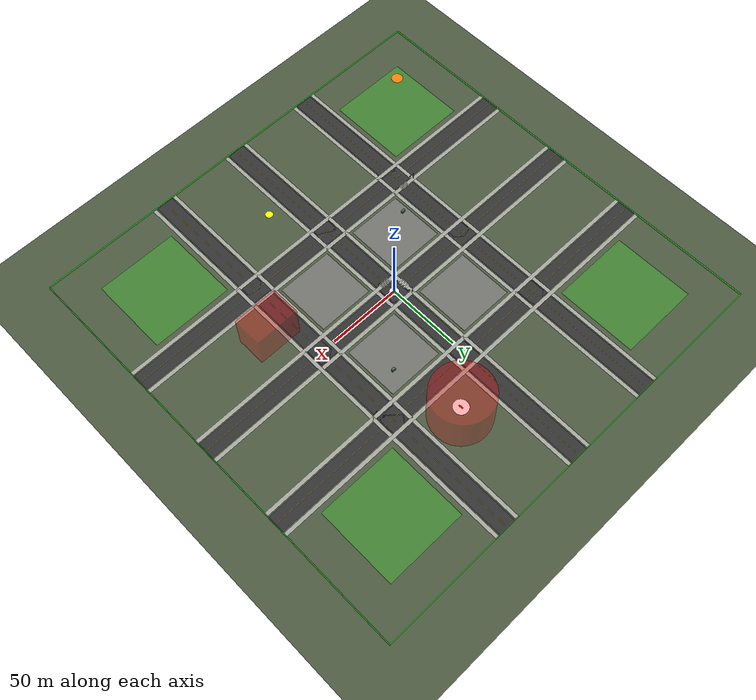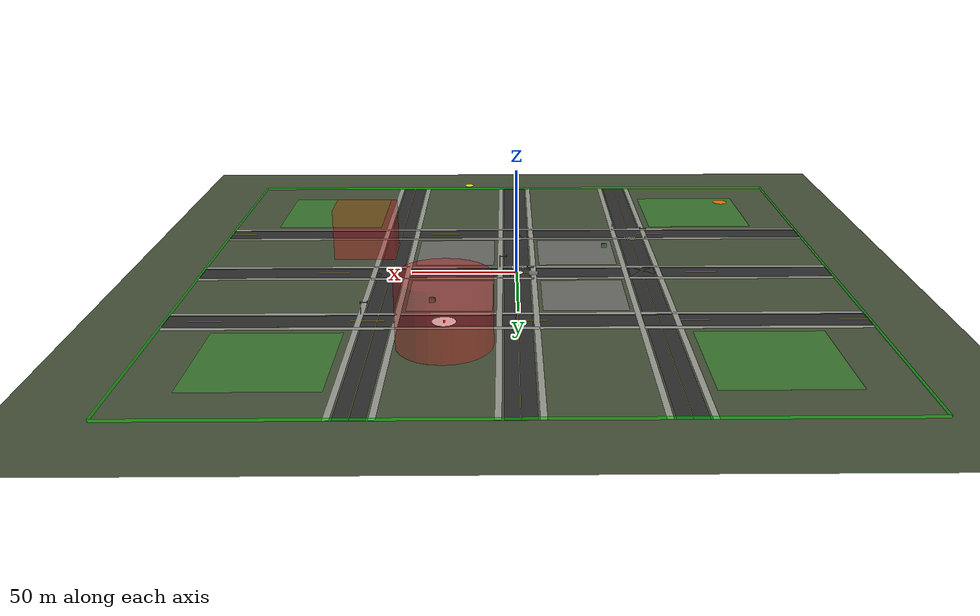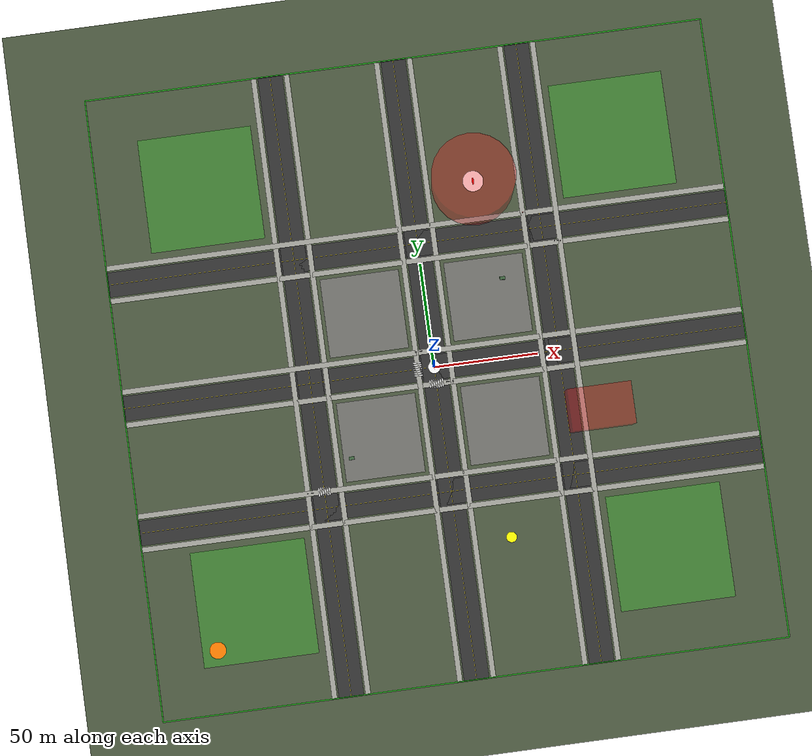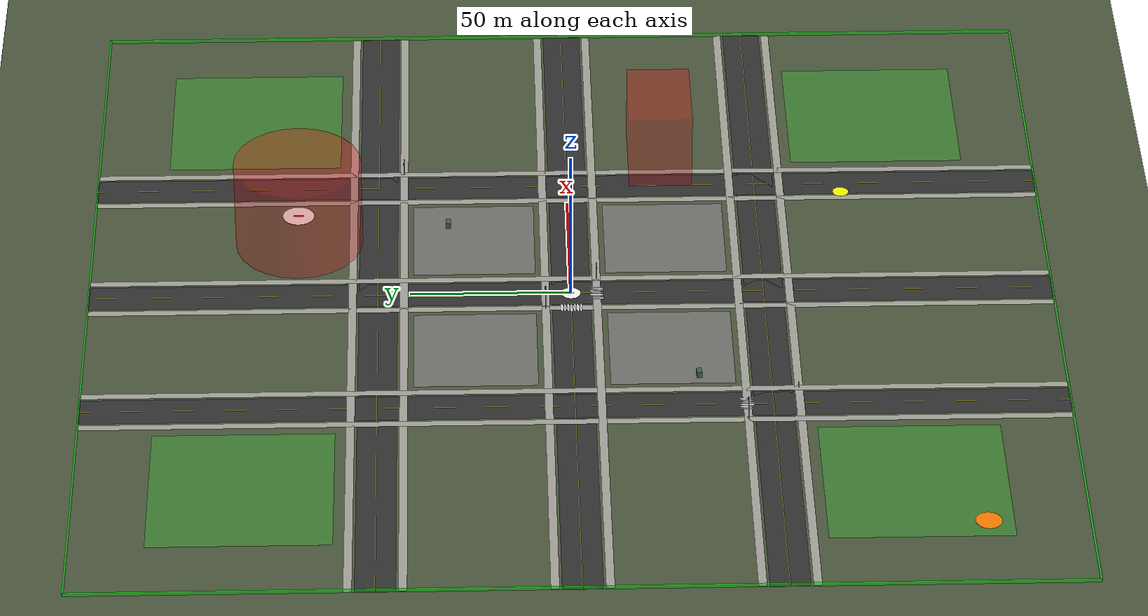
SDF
<sdf version="1.9">
 <world name="flyby_urban">
  <physics name="training_physics" type="ode">
   <max_step_size>0.001</max_step_size>
   <real_time_factor>1.0</real_time_factor>
   <real_time_update_rate>1000</real_time_update_rate>
   <ode>
    <solver><type>quick</type><iters>50</iters><sor>1.3</sor></solver>
    <constraints><cfm>0.0</cfm><erp>0.2</erp></constraints>
   </ode>
  </physics>
  <plugin filename="gz-sim-physics-system" name="gz::sim::systems::Physics"/>
  <plugin filename="gz-sim-sensors-system" name="gz::sim::systems::Sensors">
   <render_engine>ogre2</render_engine>
  </plugin>
  <plugin filename="gz-sim-scene-broadcaster-system" name="gz::sim::systems::SceneBroadcaster"/>
  <plugin filename="gz-sim-user-commands-system" name="gz::sim::systems::UserCommands"/>
  <plugin filename="gz-sim-imu-system" name="gz::sim::systems::Imu"/>
  <plugin filename="gz-sim-air-pressure-system" name="gz::sim::systems::AirPressure"/>
  <plugin filename="gz-sim-magnetometer-system" name="gz::sim::systems::Magnetometer"/>
  <plugin filename="gz-sim-navsat-system" name="gz::sim::systems::NavSat"/>
  <atmosphere type="adiabatic"><temperature>288.15</temperature><pressure>101325</pressure></atmosphere>
  <spherical_coordinates>
   <surface_model>EARTH_WGS84</surface_model>
   <world_frame_orientation>ENU</world_frame_orientation>
   <latitude_deg>33.4484</latitude_deg>
   <longitude_deg>-112.0740</longitude_deg>
   <elevation>331</elevation>
   <heading_deg>0</heading_deg>
  </spherical_coordinates>
  <light type="directional" name="sun">
   <pose>0 0 100 0 0 0</pose>
   <diffuse>0.8 0.8 0.8 1</diffuse>
   <specular>0.2 0.2 0.2 1</specular>
   <attenuation>
    <range>1000</range>
    <constant>0.9</constant>
    <linear>0.01</linear>
    <quadratic>0.001</quadratic>
   </attenuation>
   <direction>-0.5 0.1 -0.9</direction>
  </light>
  <light type="directional" name="ambient_fill">
   <cast_shadows>false</cast_shadows>
   <pose>0 0 100 0 0 0</pose>
   <diffuse>0.15 0.15 0.18 1</diffuse>
   <specular>0 0 0 1</specular>
   <direction>0 0 -1</direction>
  </light>
  <scene><ambient>0.4 0.4 0.4 1</ambient><background>0.7 0.75 0.85 1</background><shadows>true</shadows></scene>
  <model name="ground_base">
   <static>true</static>
   <pose>0 0 -0.01 0 0 0</pose>
   <link name="link">
    <collision name="collision">
     <geometry><plane><normal>0 0 1</normal><size>400 400</size></plane></geometry>
     <surface><friction><ode><mu>100</mu><mu2>50</mu2></ode></friction></surface>
    </collision>
    <visual name="visual">
     <geometry><plane><normal>0 0 1</normal><size>400 400</size></plane></geometry>
     <material><ambient>0.25 0.3 0.2 1</ambient><diffuse>0.3 0.35 0.25 1</diffuse></material>
    </visual>
   </link>
  </model>
  <model name="road_ns_west">
   <static>true</static>
   <pose>-60 0 0.001 0 0 0</pose>
   <link name="link">
    <visual name="asphalt">
     <geometry><box><size>12 300 0.002</size></box></geometry>
     <material><ambient>0.15 0.15 0.15 1</ambient><diffuse>0.2 0.2 0.2 1</diffuse></material>
    </visual>
    <visual name="center_line">
     <pose>0 0 0.001 0 0 0</pose>
     <geometry><box><size>0.15 300 0.001</size></box></geometry>
     <material><ambient>0.9 0.8 0.1 1</ambient><diffuse>1.0 0.9 0.2 1</diffuse></material>
    </visual>
   </link>
  </model>
  <model name="road_ns_center">
   <static>true</static>
   <pose>0 0 0.001 0 0 0</pose>
   <link name="link">
    <visual name="asphalt">
     <geometry><box><size>12 300 0.002</size></box></geometry>
     <material><ambient>0.15 0.15 0.15 1</ambient><diffuse>0.2 0.2 0.2 1</diffuse></material>
    </visual>
    <visual name="center_line">
     <pose>0 0 0.001 0 0 0</pose>
     <geometry><box><size>0.15 300 0.001</size></box></geometry>
     <material><ambient>0.9 0.8 0.1 1</ambient><diffuse>1.0 0.9 0.2 1</diffuse></material>
    </visual>
   </link>
  </model>
  <model name="road_ns_east">
   <static>true</static>
   <pose>60 0 0.001 0 0 0</pose>
   <link name="link">
    <visual name="asphalt">
     <geometry><box><size>12 300 0.002</size></box></geometry>
     <material><ambient>0.15 0.15 0.15 1</ambient><diffuse>0.2 0.2 0.2 1</diffuse></material>
    </visual>
    <visual name="center_line">
     <pose>0 0 0.001 0 0 0</pose>
     <geometry><box><size>0.15 300 0.001</size></box></geometry>
     <material><ambient>0.9 0.8 0.1 1</ambient><diffuse>1.0 0.9 0.2 1</diffuse></material>
    </visual>
   </link>
  </model>
  <model name="road_ew_south">
   <static>true</static>
   <pose>0 -60 0.001 0 0 0</pose>
   <link name="link">
    <visual name="asphalt">
     <geometry><box><size>300 12 0.002</size></box></geometry>
     <material><ambient>0.15 0.15 0.15 1</ambient><diffuse>0.2 0.2 0.2 1</diffuse></material>
    </visual>
    <visual name="center_line">
     <pose>0 0 0.001 0 0 0</pose>
     <geometry><box><size>300 0.15 0.001</size></box></geometry>
     <material><ambient>0.9 0.8 0.1 1</ambient><diffuse>1.0 0.9 0.2 1</diffuse></material>
    </visual>
   </link>
  </model>
  <model name="road_ew_center">
   <static>true</static>
   <pose>0 0 0.001 0 0 0</pose>
   <link name="link">
    <visual name="asphalt">
     <geometry><box><size>300 12 0.002</size></box></geometry>
     <material><ambient>0.15 0.15 0.15 1</ambient><diffuse>0.2 0.2 0.2 1</diffuse></material>
    </visual>
    <visual name="center_line">
     <pose>0 0 0.001 0 0 0</pose>
     <geometry><box><size>300 0.15 0.001</size></box></geometry>
     <material><ambient>0.9 0.8 0.1 1</ambient><diffuse>1.0 0.9 0.2 1</diffuse></material>
    </visual>
   </link>
  </model>
  <model name="road_ew_north">
   <static>true</static>
   <pose>0 60 0.001 0 0 0</pose>
   <link name="link">
    <visual name="asphalt">
     <geometry><box><size>300 12 0.002</size></box></geometry>
     <material><ambient>0.15 0.15 0.15 1</ambient><diffuse>0.2 0.2 0.2 1</diffuse></material>
    </visual>
    <visual name="center_line">
     <pose>0 0 0.001 0 0 0</pose>
     <geometry><box><size>300 0.15 0.001</size></box></geometry>
     <material><ambient>0.9 0.8 0.1 1</ambient><diffuse>1.0 0.9 0.2 1</diffuse></material>
    </visual>
   </link>
  </model>
  <model name="sidewalk_ns_west_w">
   <static>true</static>
   <pose>-68 0 0.002 0 0 0</pose>
   <link name="link">
    <visual name="visual">
     <geometry><box><size>2.5 300 0.003</size></box></geometry>
     <material><ambient>0.55 0.55 0.52 1</ambient><diffuse>0.65 0.65 0.62 1</diffuse></material>
    </visual>
   </link>
  </model>
  <model name="sidewalk_ns_west_e">
   <static>true</static>
   <pose>-52 0 0.002 0 0 0</pose>
   <link name="link">
    <visual name="visual">
     <geometry><box><size>2.5 300 0.003</size></box></geometry>
     <material><ambient>0.55 0.55 0.52 1</ambient><diffuse>0.65 0.65 0.62 1</diffuse></material>
    </visual>
   </link>
  </model>
  <model name="sidewalk_ns_center_w">
   <static>true</static>
   <pose>-8 0 0.002 0 0 0</pose>
   <link name="link">
    <visual name="visual">
     <geometry><box><size>2.5 300 0.003</size></box></geometry>
     <material><ambient>0.55 0.55 0.52 1</ambient><diffuse>0.65 0.65 0.62 1</diffuse></material>
    </visual>
   </link>
  </model>
  <model name="sidewalk_ns_center_e">
   <static>true</static>
   <pose>8 0 0.002 0 0 0</pose>
   <link name="link">
    <visual name="visual">
     <geometry><box><size>2.5 300 0.003</size></box></geometry>
     <material><ambient>0.55 0.55 0.52 1</ambient><diffuse>0.65 0.65 0.62 1</diffuse></material>
    </visual>
   </link>
  </model>
  <model name="sidewalk_ns_east_w">
   <static>true</static>
   <pose>52 0 0.002 0 0 0</pose>
   <link name="link">
    <visual name="visual">
     <geometry><box><size>2.5 300 0.003</size></box></geometry>
     <material><ambient>0.55 0.55 0.52 1</ambient><diffuse>0.65 0.65 0.62 1</diffuse></material>
    </visual>
   </link>
  </model>
  <model name="sidewalk_ns_east_e">
   <static>true</static>
   <pose>68 0 0.002 0 0 0</pose>
   <link name="link">
    <visual name="visual">
     <geometry><box><size>2.5 300 0.003</size></box></geometry>
     <material><ambient>0.55 0.55 0.52 1</ambient><diffuse>0.65 0.65 0.62 1</diffuse></material>
    </visual>
   </link>
  </model>
  <model name="sidewalk_ew_south_s">
   <static>true</static>
   <pose>0 -68 0.002 0 0 0</pose>
   <link name="link">
    <visual name="visual">
     <geometry><box><size>300 2.5 0.003</size></box></geometry>
     <material><ambient>0.55 0.55 0.52 1</ambient><diffuse>0.65 0.65 0.62 1</diffuse></material>
    </visual>
   </link>
  </model>
  <model name="sidewalk_ew_south_n">
   <static>true</static>
   <pose>0 -52 0.002 0 0 0</pose>
   <link name="link">
    <visual name="visual">
     <geometry><box><size>300 2.5 0.003</size></box></geometry>
     <material><ambient>0.55 0.55 0.52 1</ambient><diffuse>0.65 0.65 0.62 1</diffuse></material>
    </visual>
   </link>
  </model>
  <model name="sidewalk_ew_center_s">
   <static>true</static>
   <pose>0 -8 0.002 0 0 0</pose>
   <link name="link">
    <visual name="visual">
     <geometry><box><size>300 2.5 0.003</size></box></geometry>
     <material><ambient>0.55 0.55 0.52 1</ambient><diffuse>0.65 0.65 0.62 1</diffuse></material>
    </visual>
   </link>
  </model>
  <model name="sidewalk_ew_center_n">
   <static>true</static>
   <pose>0 8 0.002 0 0 0</pose>
   <link name="link">
    <visual name="visual">
     <geometry><box><size>300 2.5 0.003</size></box></geometry>
     <material><ambient>0.55 0.55 0.52 1</ambient><diffuse>0.65 0.65 0.62 1</diffuse></material>
    </visual>
   </link>
  </model>
  <model name="sidewalk_ew_north_s">
   <static>true</static>
   <pose>0 52 0.002 0 0 0</pose>
   <link name="link">
    <visual name="visual">
     <geometry><box><size>300 2.5 0.003</size></box></geometry>
     <material><ambient>0.55 0.55 0.52 1</ambient><diffuse>0.65 0.65 0.62 1</diffuse></material>
    </visual>
   </link>
  </model>
  <model name="sidewalk_ew_north_n">
   <static>true</static>
   <pose>0 68 0.002 0 0 0</pose>
   <link name="link">
    <visual name="visual">
     <geometry><box><size>300 2.5 0.003</size></box></geometry>
     <material><ambient>0.55 0.55 0.52 1</ambient><diffuse>0.65 0.65 0.62 1</diffuse></material>
    </visual>
   </link>
  </model>
  <model name="block_commercial_nw">
   <static>true</static>
   <pose>-30 30 0.003 0 0 0</pose>
   <link name="link">
    <visual name="visual">
     <geometry><box><size>38 38 0.002</size></box></geometry>
     <material><ambient>0.4 0.4 0.38 1</ambient><diffuse>0.45 0.45 0.43 1</diffuse></material>
    </visual>
   </link>
  </model>
  <model name="block_commercial_ne">
   <static>true</static>
   <pose>30 30 0.003 0 0 0</pose>
   <link name="link">
    <visual name="visual">
     <geometry><box><size>38 38 0.002</size></box></geometry>
     <material><ambient>0.4 0.4 0.38 1</ambient><diffuse>0.45 0.45 0.43 1</diffuse></material>
    </visual>
   </link>
  </model>
  <model name="block_commercial_sw">
   <static>true</static>
   <pose>-30 -30 0.003 0 0 0</pose>
   <link name="link">
    <visual name="visual">
     <geometry><box><size>38 38 0.002</size></box></geometry>
     <material><ambient>0.4 0.4 0.38 1</ambient><diffuse>0.45 0.45 0.43 1</diffuse></material>
    </visual>
   </link>
  </model>
  <model name="block_commercial_se">
   <static>true</static>
   <pose>30 -30 0.003 0 0 0</pose>
   <link name="link">
    <visual name="visual">
     <geometry><box><size>38 38 0.002</size></box></geometry>
     <material><ambient>0.4 0.4 0.38 1</ambient><diffuse>0.45 0.45 0.43 1</diffuse></material>
    </visual>
   </link>
  </model>
  <model name="block_residential_far_nw">
   <static>true</static>
   <pose>-100 100 0.002 0 0 0</pose>
   <link name="link">
    <visual name="visual">
     <geometry><box><size>55 55 0.002</size></box></geometry>
     <material><ambient>0.2 0.4 0.15 1</ambient><diffuse>0.25 0.5 0.2 1</diffuse></material>
    </visual>
   </link>
  </model>
  <model name="block_residential_far_ne">
   <static>true</static>
   <pose>100 100 0.002 0 0 0</pose>
   <link name="link">
    <visual name="visual">
     <geometry><box><size>55 55 0.002</size></box></geometry>
     <material><ambient>0.2 0.4 0.15 1</ambient><diffuse>0.25 0.5 0.2 1</diffuse></material>
    </visual>
   </link>
  </model>
  <model name="block_residential_far_sw">
   <static>true</static>
   <pose>-100 -100 0.002 0 0 0</pose>
   <link name="link">
    <visual name="visual">
     <geometry><box><size>55 55 0.002</size></box></geometry>
     <material><ambient>0.2 0.4 0.15 1</ambient><diffuse>0.25 0.5 0.2 1</diffuse></material>
    </visual>
   </link>
  </model>
  <model name="block_residential_far_se">
   <static>true</static>
   <pose>100 -100 0.002 0 0 0</pose>
   <link name="link">
    <visual name="visual">
     <geometry><box><size>55 55 0.002</size></box></geometry>
     <material><ambient>0.2 0.4 0.15 1</ambient><diffuse>0.25 0.5 0.2 1</diffuse></material>
    </visual>
   </link>
  </model>
  <model name="geofence_north">
   <static>true</static>
   <pose>0 150 0.5 0 0 0</pose>
   <link name="link">
    <visual name="visual">
     <geometry><box><size>300 0.5 1</size></box></geometry>
     <material><ambient>0 1 0 0.5</ambient><diffuse>0 1 0 0.5</diffuse></material>
    </visual>
   </link>
  </model>
  <model name="geofence_south">
   <static>true</static>
   <pose>0 -150 0.5 0 0 0</pose>
   <link name="link">
    <visual name="visual">
     <geometry><box><size>300 0.5 1</size></box></geometry>
     <material><ambient>0 1 0 0.5</ambient><diffuse>0 1 0 0.5</diffuse></material>
    </visual>
   </link>
  </model>
  <model name="geofence_east">
   <static>true</static>
   <pose>150 0 0.5 0 0 0</pose>
   <link name="link">
    <visual name="visual">
     <geometry><box><size>0.5 300 1</size></box></geometry>
     <material><ambient>0 1 0 0.5</ambient><diffuse>0 1 0 0.5</diffuse></material>
    </visual>
   </link>
  </model>
  <model name="geofence_west">
   <static>true</static>
   <pose>-150 0 0.5 0 0 0</pose>
   <link name="link">
    <visual name="visual">
     <geometry><box><size>0.5 300 1</size></box></geometry>
     <material><ambient>0 1 0 0.5</ambient><diffuse>0 1 0 0.5</diffuse></material>
    </visual>
   </link>
  </model>
  <model name="gas_station_collision">
   <static>true</static>
   <pose>-25 -25 2.5 0 0 0.02</pose>
   <link name="link">
    <collision name="collision"><geometry><box><size>20 15 5</size></box></geometry></collision>
   </link>
  </model>
  <model name="fast_food_collision">
   <static>true</static>
   <pose>24.5 -28 2.5 0 0 -0.03</pose>
   <link name="link">
    <collision name="collision"><geometry><box><size>10 8 5</size></box></geometry></collision>
   </link>
  </model>
  <model name="grocery_store_collision">
   <static>true</static>
   <pose>-30 30.3 3 0 0 0</pose>
   <link name="link">
    <collision name="collision"><geometry><box><size>12 10 6</size></box></geometry></collision>
   </link>
  </model>
  <model name="thrift_shop_collision">
   <static>true</static>
   <pose>28 32 3 0 0 0.04</pose>
   <link name="link">
    <collision name="collision"><geometry><box><size>8 6 6</size></box></geometry></collision>
   </link>
  </model>
  <model name="post_office_collision">
   <static>true</static>
   <pose>-38 -35 3 0 0 0.01</pose>
   <link name="link">
    <collision name="collision"><geometry><box><size>8 6 6</size></box></geometry></collision>
   </link>
  </model>
  <model name="office_building_1_collision">
   <static>true</static>
   <pose>25 -85 10 0 0 0.015</pose>
   <link name="link">
    <collision name="collision"><geometry><box><size>15 12 20</size></box></geometry></collision>
   </link>
  </model>
  <model name="office_building_2_collision">
   <static>true</static>
   <pose>-28 85 10 0 0 3.16</pose>
   <link name="link">
    <collision name="collision"><geometry><box><size>15 12 20</size></box></geometry></collision>
   </link>
  </model>
  <model name="fire_station_collision">
   <static>true</static>
   <pose>75 -30 4 0 0 -1.57</pose>
   <link name="link">
    <collision name="collision"><geometry><box><size>18 12 8</size></box></geometry></collision>
   </link>
  </model>
  <model name="apartment_1_collision">
   <static>true</static>
   <pose>-85 30 7.5 0 0 0.03</pose>
   <link name="link">
    <collision name="collision"><geometry><box><size>20 15 15</size></box></geometry></collision>
   </link>
  </model>
  <model name="apartment_2_collision">
   <static>true</static>
   <pose>85 -85 7.5 0 0 1.59</pose>
   <link name="link">
    <collision name="collision"><geometry><box><size>20 15 15</size></box></geometry></collision>
   </link>
  </model>
  <model name="apartment_3a_collision">
   <static>true</static>
   <pose>-85 -85 7.5 0 0 0.02</pose>
   <link name="link">
    <collision name="collision"><geometry><box><size>20 15 15</size></box></geometry></collision>
   </link>
  </model>
  <model name="apartment_3b_collision">
   <static>true</static>
   <pose>-85 -105 7.5 0 0 -0.02</pose>
   <link name="link">
    <collision name="collision"><geometry><box><size>20 15 15</size></box></geometry></collision>
   </link>
  </model>
  <model name="house_nw_1_collision">
   <static>true</static>
   <pose>-95 95 4 0 0 0.78</pose>
   <link name="link">
    <collision name="collision"><geometry><box><size>12 10 8</size></box></geometry></collision>
   </link>
  </model>
  <model name="house_nw_2_collision">
   <static>true</static>
   <pose>-110 100 4 0 0 0.02</pose>
   <link name="link">
    <collision name="collision"><geometry><box><size>12 10 8</size></box></geometry></collision>
   </link>
  </model>
  <model name="house_nw_3_collision">
   <static>true</static>
   <pose>-95 110 4 0 0 -0.03</pose>
   <link name="link">
    <collision name="collision"><geometry><box><size>12 10 8</size></box></geometry></collision>
   </link>
  </model>
  <model name="house_ne_1_collision">
   <static>true</static>
   <pose>95 95 4 0 0 2.35</pose>
   <link name="link">
    <collision name="collision"><geometry><box><size>12 10 8</size></box></geometry></collision>
   </link>
  </model>
  <model name="house_ne_2_collision">
   <static>true</static>
   <pose>110 100 4 0 0 3.12</pose>
   <link name="link">
    <collision name="collision"><geometry><box><size>12 10 8</size></box></geometry></collision>
   </link>
  </model>
  <model name="house_sw_1_collision">
   <static>true</static>
   <pose>-95 -95 4 0 0 -0.78</pose>
   <link name="link">
    <collision name="collision"><geometry><box><size>12 10 8</size></box></geometry></collision>
   </link>
  </model>
  <model name="house_sw_2_collision">
   <static>true</static>
   <pose>-110 -100 4 0 0 0.01</pose>
   <link name="link">
    <collision name="collision"><geometry><box><size>12 10 8</size></box></geometry></collision>
   </link>
  </model>
  <model name="house_se_1_collision">
   <static>true</static>
   <pose>95 -95 4 0 0 -2.35</pose>
   <link name="link">
    <collision name="collision"><geometry><box><size>12 10 8</size></box></geometry></collision>
   </link>
  </model>
  <model name="house_se_2_collision">
   <static>true</static>
   <pose>110 -100 4 0 0 3.16</pose>
   <link name="link">
    <collision name="collision"><geometry><box><size>12 10 8</size></box></geometry></collision>
   </link>
  </model>
  <model name="hospital_building_collision">
   <static>true</static>
   <pose>30 85 5 0 0 0</pose>
   <link name="link">
    <collision name="collision"><geometry><box><size>18 14 10</size></box></geometry></collision>
   </link>
  </model>
  <model name="helipad_marker">
   <static>true</static>
   <pose>30 85 10.02 0 0 0</pose>
   <link name="link">
    <visual name="circle">
     <geometry><cylinder><radius>5</radius><length>0.04</length></cylinder></geometry>
     <material><ambient>1 1 1 1</ambient><diffuse>1 1 1 1</diffuse></material>
    </visual>
    <visual name="h_mark">
     <pose>0 0 0.02 0 0 0</pose>
     <geometry><box><size>0.8 3 0.02</size></box></geometry>
     <material><ambient>1 0 0 1</ambient><diffuse>1 0 0 1</diffuse></material>
    </visual>
   </link>
  </model>
  <model name="nfz_hospital_helipad">
   <static>true</static>
   <pose>30 85 15 0 0 0</pose>
   <link name="link">
    <visual name="visual">
     <geometry><cylinder><radius>20</radius><length>30</length></cylinder></geometry>
     <material><ambient>1 0 0 0.3</ambient><diffuse>1 0 0 0.3</diffuse></material>
    </visual>
   </link>
  </model>
  <model name="nfz_government">
   <static>true</static>
   <pose>75 -30 12.5 0 0 0</pose>
   <link name="link">
    <visual name="visual">
     <geometry><box><size>30 20 25</size></box></geometry>
     <material><ambient>1 0 0 0.3</ambient><diffuse>1 0 0 0.3</diffuse></material>
    </visual>
   </link>
  </model>
  <model name="vehicle_1_collision">
   <static>true</static>
   <pose>-40 -55 0.75 0 0 0</pose>
   <link name="link">
    <collision name="collision"><geometry><box><size>4 1.8 1.5</size></box></geometry></collision>
   </link>
  </model>
  <model name="vehicle_2_collision">
   <static>true</static>
   <pose>-25 -55 0.75 0 0 0.02</pose>
   <link name="link">
    <collision name="collision"><geometry><box><size>4 1.8 1.5</size></box></geometry></collision>
   </link>
  </model>
  <model name="vehicle_3_collision">
   <static>true</static>
   <pose>-5 -40 0.9 0 0 1.57</pose>
   <link name="link">
    <collision name="collision"><geometry><box><size>4.5 2 1.8</size></box></geometry></collision>
   </link>
  </model>
  <model name="vehicle_4_collision">
   <static>true</static>
   <pose>5 40 0.9 0 0 -1.57</pose>
   <link name="link">
    <collision name="collision"><geometry><box><size>5.5 2 1.8</size></box></geometry></collision>
   </link>
  </model>
  <model name="vehicle_5_collision">
   <static>true</static>
   <pose>-35 -20 0.75 0 0 0.05</pose>
   <link name="link">
    <collision name="collision"><geometry><box><size>4.5 1.8 1.5</size></box></geometry></collision>
   </link>
  </model>
  <model name="vehicle_6_collision">
   <static>true</static>
   <pose>35 -35 0.75 0 0 3.14</pose>
   <link name="link">
    <collision name="collision"><geometry><box><size>4 1.8 1.5</size></box></geometry></collision>
   </link>
  </model>
  <model name="bus_1_collision">
   <static>true</static>
   <pose>-5 75 1.5 0 0 1.57</pose>
   <link name="link">
    <collision name="collision"><geometry><box><size>12 2.5 3</size></box></geometry></collision>
   </link>
  </model>
  <model name="traffic_light_center_nw">
   <static>true</static>
   <pose>-8 8 0 0 0 0</pose>
   <link name="link">
    <visual name="pole">
     <pose>0 0 3 0 0 0</pose>
     <geometry><cylinder><radius>0.1</radius><length>6</length></cylinder></geometry>
     <material><ambient>0.2 0.2 0.2 1</ambient><diffuse>0.3 0.3 0.3 1</diffuse></material>
    </visual>
    <visual name="arm">
     <pose>1.5 0 5.5 0 1.57 0</pose>
     <geometry><cylinder><radius>0.08</radius><length>3</length></cylinder></geometry>
     <material><ambient>0.2 0.2 0.2 1</ambient><diffuse>0.3 0.3 0.3 1</diffuse></material>
    </visual>
    <visual name="light_box">
     <pose>3 0 5.5 0 0 0</pose>
     <geometry><box><size>0.4 0.4 1.2</size></box></geometry>
     <material><ambient>0.15 0.15 0.15 1</ambient><diffuse>0.2 0.2 0.2 1</diffuse></material>
    </visual>
    <collision name="collision">
     <pose>0 0 3 0 0 0</pose>
     <geometry><cylinder><radius>0.15</radius><length>6</length></cylinder></geometry>
    </collision>
   </link>
  </model>
  <model name="traffic_light_center_se">
   <static>true</static>
   <pose>8 -8 0 0 0 3.14</pose>
   <link name="link">
    <visual name="pole">
     <pose>0 0 3 0 0 0</pose>
     <geometry><cylinder><radius>0.1</radius><length>6</length></cylinder></geometry>
     <material><ambient>0.2 0.2 0.2 1</ambient><diffuse>0.3 0.3 0.3 1</diffuse></material>
    </visual>
    <visual name="arm">
     <pose>1.5 0 5.5 0 1.57 0</pose>
     <geometry><cylinder><radius>0.08</radius><length>3</length></cylinder></geometry>
     <material><ambient>0.2 0.2 0.2 1</ambient><diffuse>0.3 0.3 0.3 1</diffuse></material>
    </visual>
    <visual name="light_box">
     <pose>3 0 5.5 0 0 0</pose>
     <geometry><box><size>0.4 0.4 1.2</size></box></geometry>
     <material><ambient>0.15 0.15 0.15 1</ambient><diffuse>0.2 0.2 0.2 1</diffuse></material>
    </visual>
    <collision name="collision">
     <pose>0 0 3 0 0 0</pose>
     <geometry><cylinder><radius>0.15</radius><length>6</length></cylinder></geometry>
    </collision>
   </link>
  </model>
  <model name="traffic_light_sw">
   <static>true</static>
   <pose>-68 -52 0 0 0 0</pose>
   <link name="link">
    <visual name="pole">
     <pose>0 0 3 0 0 0</pose>
     <geometry><cylinder><radius>0.1</radius><length>6</length></cylinder></geometry>
     <material><ambient>0.2 0.2 0.2 1</ambient><diffuse>0.3 0.3 0.3 1</diffuse></material>
    </visual>
    <visual name="arm">
     <pose>1.5 0 5.5 0 1.57 0</pose>
     <geometry><cylinder><radius>0.08</radius><length>3</length></cylinder></geometry>
     <material><ambient>0.2 0.2 0.2 1</ambient><diffuse>0.3 0.3 0.3 1</diffuse></material>
    </visual>
    <visual name="light_box">
     <pose>3 0 5.5 0 0 0</pose>
     <geometry><box><size>0.4 0.4 1.2</size></box></geometry>
     <material><ambient>0.15 0.15 0.15 1</ambient><diffuse>0.2 0.2 0.2 1</diffuse></material>
    </visual>
    <collision name="collision">
     <pose>0 0 3 0 0 0</pose>
     <geometry><cylinder><radius>0.15</radius><length>6</length></cylinder></geometry>
    </collision>
   </link>
  </model>
  <model name="traffic_light_ne">
   <static>true</static>
   <pose>68 52 0 0 0 3.14</pose>
   <link name="link">
    <visual name="pole">
     <pose>0 0 3 0 0 0</pose>
     <geometry><cylinder><radius>0.1</radius><length>6</length></cylinder></geometry>
     <material><ambient>0.2 0.2 0.2 1</ambient><diffuse>0.3 0.3 0.3 1</diffuse></material>
    </visual>
    <visual name="arm">
     <pose>1.5 0 5.5 0 1.57 0</pose>
     <geometry><cylinder><radius>0.08</radius><length>3</length></cylinder></geometry>
     <material><ambient>0.2 0.2 0.2 1</ambient><diffuse>0.3 0.3 0.3 1</diffuse></material>
    </visual>
    <visual name="light_box">
     <pose>3 0 5.5 0 0 0</pose>
     <geometry><box><size>0.4 0.4 1.2</size></box></geometry>
     <material><ambient>0.15 0.15 0.15 1</ambient><diffuse>0.2 0.2 0.2 1</diffuse></material>
    </visual>
    <collision name="collision">
     <pose>0 0 3 0 0 0</pose>
     <geometry><cylinder><radius>0.15</radius><length>6</length></cylinder></geometry>
    </collision>
   </link>
  </model>
  <model name="stop_sign_1">
   <static>true</static>
   <pose>-52 -68 0 0 0 0</pose>
   <link name="link">
    <visual name="pole">
     <pose>0 0 1.5 0 0 0</pose>
     <geometry><cylinder><radius>0.05</radius><length>3</length></cylinder></geometry>
     <material><ambient>0.3 0.3 0.3 1</ambient><diffuse>0.4 0.4 0.4 1</diffuse></material>
    </visual>
    <visual name="sign">
     <pose>0 0 2.8 0 0 0</pose>
     <geometry><box><size>0.6 0.05 0.6</size></box></geometry>
     <material><ambient>0.8 0.1 0.1 1</ambient><diffuse>0.9 0.15 0.15 1</diffuse></material>
    </visual>
    <collision name="collision">
     <pose>0 0 1.5 0 0 0</pose>
     <geometry><cylinder><radius>0.1</radius><length>3</length></cylinder></geometry>
    </collision>
   </link>
  </model>
  <model name="stop_sign_2">
   <static>true</static>
   <pose>52 68 0 0 0 3.14</pose>
   <link name="link">
    <visual name="pole">
     <pose>0 0 1.5 0 0 0</pose>
     <geometry><cylinder><radius>0.05</radius><length>3</length></cylinder></geometry>
     <material><ambient>0.3 0.3 0.3 1</ambient><diffuse>0.4 0.4 0.4 1</diffuse></material>
    </visual>
    <visual name="sign">
     <pose>0 0 2.8 0 0 0</pose>
     <geometry><box><size>0.6 0.05 0.6</size></box></geometry>
     <material><ambient>0.8 0.1 0.1 1</ambient><diffuse>0.9 0.15 0.15 1</diffuse></material>
    </visual>
    <collision name="collision">
     <pose>0 0 1.5 0 0 0</pose>
     <geometry><cylinder><radius>0.1</radius><length>3</length></cylinder></geometry>
    </collision>
   </link>
  </model>
  <model name="crosswalk_center_ns">
   <static>true</static>
   <pose>0 -8 0.004 0 0 0</pose>
   <link name="link">
    <visual name="stripe1">
     <pose>-3 0 0 0 0 0</pose>
     <geometry><box><size>0.5 4 0.002</size></box></geometry>
     <material><ambient>1 1 1 1</ambient><diffuse>1 1 1 1</diffuse></material>
    </visual>
    <visual name="stripe2">
     <pose>-2 0 0 0 0 0</pose>
     <geometry><box><size>0.5 4 0.002</size></box></geometry>
     <material><ambient>1 1 1 1</ambient><diffuse>1 1 1 1</diffuse></material>
    </visual>
    <visual name="stripe3">
     <pose>-1 0 0 0 0 0</pose>
     <geometry><box><size>0.5 4 0.002</size></box></geometry>
     <material><ambient>1 1 1 1</ambient><diffuse>1 1 1 1</diffuse></material>
    </visual>
    <visual name="stripe4">
     <geometry><box><size>0.5 4 0.002</size></box></geometry>
     <material><ambient>1 1 1 1</ambient><diffuse>1 1 1 1</diffuse></material>
    </visual>
    <visual name="stripe5">
     <pose>1 0 0 0 0 0</pose>
     <geometry><box><size>0.5 4 0.002</size></box></geometry>
     <material><ambient>1 1 1 1</ambient><diffuse>1 1 1 1</diffuse></material>
    </visual>
    <visual name="stripe6">
     <pose>2 0 0 0 0 0</pose>
     <geometry><box><size>0.5 4 0.002</size></box></geometry>
     <material><ambient>1 1 1 1</ambient><diffuse>1 1 1 1</diffuse></material>
    </visual>
    <visual name="stripe7">
     <pose>3 0 0 0 0 0</pose>
     <geometry><box><size>0.5 4 0.002</size></box></geometry>
     <material><ambient>1 1 1 1</ambient><diffuse>1 1 1 1</diffuse></material>
    </visual>
   </link>
  </model>
  <model name="crosswalk_center_ew">
   <static>true</static>
   <pose>-8 0 0.004 0 0 1.57</pose>
   <link name="link">
    <visual name="stripe1">
     <pose>-3 0 0 0 0 0</pose>
     <geometry><box><size>0.5 4 0.002</size></box></geometry>
     <material><ambient>1 1 1 1</ambient><diffuse>1 1 1 1</diffuse></material>
    </visual>
    <visual name="stripe2">
     <pose>-2 0 0 0 0 0</pose>
     <geometry><box><size>0.5 4 0.002</size></box></geometry>
     <material><ambient>1 1 1 1</ambient><diffuse>1 1 1 1</diffuse></material>
    </visual>
    <visual name="stripe3">
     <pose>-1 0 0 0 0 0</pose>
     <geometry><box><size>0.5 4 0.002</size></box></geometry>
     <material><ambient>1 1 1 1</ambient><diffuse>1 1 1 1</diffuse></material>
    </visual>
    <visual name="stripe4">
     <geometry><box><size>0.5 4 0.002</size></box></geometry>
     <material><ambient>1 1 1 1</ambient><diffuse>1 1 1 1</diffuse></material>
    </visual>
    <visual name="stripe5">
     <pose>1 0 0 0 0 0</pose>
     <geometry><box><size>0.5 4 0.002</size></box></geometry>
     <material><ambient>1 1 1 1</ambient><diffuse>1 1 1 1</diffuse></material>
    </visual>
    <visual name="stripe6">
     <pose>2 0 0 0 0 0</pose>
     <geometry><box><size>0.5 4 0.002</size></box></geometry>
     <material><ambient>1 1 1 1</ambient><diffuse>1 1 1 1</diffuse></material>
    </visual>
    <visual name="stripe7">
     <pose>3 0 0 0 0 0</pose>
     <geometry><box><size>0.5 4 0.002</size></box></geometry>
     <material><ambient>1 1 1 1</ambient><diffuse>1 1 1 1</diffuse></material>
    </visual>
   </link>
  </model>
  <model name="crosswalk_sw_ns">
   <static>true</static>
   <pose>-60 -52 0.004 0 0 0</pose>
   <link name="link">
    <visual name="stripe1">
     <pose>-2.5 0 0 0 0 0</pose>
     <geometry><box><size>0.5 4 0.002</size></box></geometry>
     <material><ambient>1 1 1 1</ambient><diffuse>1 1 1 1</diffuse></material>
    </visual>
    <visual name="stripe2">
     <pose>-1.5 0 0 0 0 0</pose>
     <geometry><box><size>0.5 4 0.002</size></box></geometry>
     <material><ambient>1 1 1 1</ambient><diffuse>1 1 1 1</diffuse></material>
    </visual>
    <visual name="stripe3">
     <pose>-0.5 0 0 0 0 0</pose>
     <geometry><box><size>0.5 4 0.002</size></box></geometry>
     <material><ambient>1 1 1 1</ambient><diffuse>1 1 1 1</diffuse></material>
    </visual>
    <visual name="stripe4">
     <pose>0.5 0 0 0 0 0</pose>
     <geometry><box><size>0.5 4 0.002</size></box></geometry>
     <material><ambient>1 1 1 1</ambient><diffuse>1 1 1 1</diffuse></material>
    </visual>
    <visual name="stripe5">
     <pose>1.5 0 0 0 0 0</pose>
     <geometry><box><size>0.5 4 0.002</size></box></geometry>
     <material><ambient>1 1 1 1</ambient><diffuse>1 1 1 1</diffuse></material>
    </visual>
    <visual name="stripe6">
     <pose>2.5 0 0 0 0 0</pose>
     <geometry><box><size>0.5 4 0.002</size></box></geometry>
     <material><ambient>1 1 1 1</ambient><diffuse>1 1 1 1</diffuse></material>
    </visual>
   </link>
  </model>
  <model name="dumpster_1">
   <static>true</static>
   <pose>-45 -38 0 0 0 0.1</pose>
   <link name="link">
    <visual name="body">
     <pose>0 0 1 0 0 0</pose>
     <geometry><box><size>2.5 1.5 2</size></box></geometry>
     <material><ambient>0.2 0.35 0.2 1</ambient><diffuse>0.25 0.4 0.25 1</diffuse></material>
    </visual>
    <collision name="collision">
     <pose>0 0 1 0 0 0</pose>
     <geometry><box><size>2.5 1.5 2</size></box></geometry>
    </collision>
   </link>
  </model>
  <model name="dumpster_2">
   <static>true</static>
   <pose>38 38 0 0 0 -0.05</pose>
   <link name="link">
    <visual name="body">
     <pose>0 0 1 0 0 0</pose>
     <geometry><box><size>2.5 1.5 2</size></box></geometry>
     <material><ambient>0.2 0.35 0.2 1</ambient><diffuse>0.25 0.4 0.25 1</diffuse></material>
    </visual>
    <collision name="collision">
     <pose>0 0 1 0 0 0</pose>
     <geometry><box><size>2.5 1.5 2</size></box></geometry>
    </collision>
   </link>
  </model>
  <model name="landing_zone_primary">
   <static>true</static>
   <pose>0 0 0.005 0 0 0</pose>
   <link name="link">
    <visual name="visual">
     <geometry><cylinder><radius>3</radius><length>0.01</length></cylinder></geometry>
     <material><ambient>1 1 1 1</ambient><diffuse>1 1 1 1</diffuse></material>
    </visual>
    <visual name="H_mark">
     <pose>0 0 0.005 0 0 0</pose>
     <geometry><box><size>0.5 2 0.005</size></box></geometry>
     <material><ambient>0 0 1 1</ambient><diffuse>0 0 1 1</diffuse></material>
    </visual>
   </link>
  </model>
  <model name="landing_zone_rooftop_office">
   <static>true</static>
   <pose>25 -85 20.01 0 0 0</pose>
   <link name="link">
    <visual name="visual">
     <geometry><cylinder><radius>2.5</radius><length>0.02</length></cylinder></geometry>
     <material><ambient>1 1 0 1</ambient><diffuse>1 1 0 1</diffuse></material>
    </visual>
   </link>
  </model>
  <model name="landing_zone_emergency">
   <static>true</static>
   <pose>-120 -120 0.005 0 0 0</pose>
   <link name="link">
    <visual name="visual">
     <geometry><cylinder><radius>4</radius><length>0.01</length></cylinder></geometry>
     <material><ambient>1 0.5 0 1</ambient><diffuse>1 0.5 0 1</diffuse></material>
    </visual>
   </link>
  </model>
  <include>
   <uri>model://f11_isr_camera</uri>
   <name>f11_isr</name>
   <pose>0 0 0.5 0 0 0</pose>
   <plugin filename="gz-sim-joint-position-controller-system" name="gz::sim::systems::JointPositionController">
    <joint_name>gimbal_yaw_joint</joint_name>
    <topic>/f11_isr/gimbal/yaw</topic>
    <p_gain>10.0</p_gain>
    <i_gain>0.1</i_gain>
    <d_gain>0.5</d_gain>
    <i_max>1.0</i_max>
    <i_min>-1.0</i_min>
    <cmd_max>10.0</cmd_max>
    <cmd_min>-10.0</cmd_min>
   </plugin>
   <plugin filename="gz-sim-joint-position-controller-system" name="gz::sim::systems::JointPositionController">
    <joint_name>gimbal_pitch_joint</joint_name>
    <topic>/f11_isr/gimbal/pitch</topic>
    <p_gain>10.0</p_gain>
    <i_gain>0.1</i_gain>
    <d_gain>0.5</d_gain>
    <i_max>1.0</i_max>
    <i_min>-1.0</i_min>
    <cmd_max>10.0</cmd_max>
    <cmd_min>-10.0</cmd_min>
   </plugin>
   <plugin filename="gz-sim-joint-position-controller-system" name="gz::sim::systems::JointPositionController">
    <joint_name>camera_joint</joint_name>
    <topic>/f11_isr/gimbal/roll</topic>
    <p_gain>10.0</p_gain>
    <i_gain>0.1</i_gain>
    <d_gain>0.5</d_gain>
    <i_max>1.0</i_max>
    <i_min>-1.0</i_min>
    <cmd_max>10.0</cmd_max>
    <cmd_min>-10.0</cmd_min>
   </plugin>
  </include>
 </world>
</sdf>

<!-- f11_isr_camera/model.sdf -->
<sdf version="1.9">
  <model name="f11_isr_camera">
    <pose>0 0 0.25 0 0 0</pose>

    <!-- F-11 Base Link (Main Body) -->
    <link name="base_link">
      <inertial>
        <!-- Total mass: 4.5 kg base + 1.8 kg payload = 6.3 kg -->
        <mass>6.3</mass>
        <!-- CoG shifted down due to bottom-mounted payload -->
        <pose>0 0 -0.05 0 0 0</pose>
        <inertia>
          <!-- Adjusted inertia for heavier payload -->
          <ixx>0.115</ixx>
          <ixy>0</ixy>
          <ixz>0</ixz>
          <iyy>0.115</iyy>
          <iyz>0</iyz>
          <izz>0.175</izz>
        </inertia>
      </inertial>

      <!-- Main body visual - central frame -->
      <visual name="body_visual">
        <geometry>
          <box>
            <size>0.30 0.30 0.12</size>
          </box>
        </geometry>
        <material>
          <ambient>0.1 0.1 0.1 1</ambient>
          <diffuse>0.15 0.15 0.15 1</diffuse>
          <specular>0.3 0.3 0.3 1</specular>
        </material>
      </visual>

      <!-- Battery bay visual -->
      <visual name="battery_visual">
        <pose>0 0 -0.04 0 0 0</pose>
        <geometry>
          <box>
            <size>0.18 0.12 0.06</size>
          </box>
        </geometry>
        <material>
          <ambient>0.2 0.2 0.25 1</ambient>
          <diffuse>0.25 0.25 0.3 1</diffuse>
        </material>
      </visual>

      <!-- Jetson Orin NX housing visual -->
      <visual name="compute_visual">
        <pose>0 0 0.08 0 0 0</pose>
        <geometry>
          <box>
            <size>0.10 0.08 0.04</size>
          </box>
        </geometry>
        <material>
          <ambient>0.0 0.4 0.0 1</ambient>
          <diffuse>0.0 0.5 0.0 1</diffuse>
        </material>
      </visual>

      <!-- Front marker for orientation (green) -->
      <visual name="front_marker">
        <pose>0.12 0 0.06 0 0 0</pose>
        <geometry>
          <sphere>
            <radius>0.03</radius>
          </sphere>
        </geometry>
        <material>
          <ambient>0 1 0 1</ambient>
          <diffuse>0 1 0 1</diffuse>
        </material>
      </visual>

      <!-- Arms visual representation -->
      <visual name="arm_fr_visual">
        <pose>0.1375 -0.1375 0 0 0 -0.785398</pose>
        <geometry>
          <box>
            <size>0.25 0.04 0.03</size>
          </box>
        </geometry>
        <material>
          <ambient>0.15 0.15 0.15 1</ambient>
          <diffuse>0.2 0.2 0.2 1</diffuse>
        </material>
      </visual>

      <visual name="arm_fl_visual">
        <pose>0.1375 0.1375 0 0 0 0.785398</pose>
        <geometry>
          <box>
            <size>0.25 0.04 0.03</size>
          </box>
        </geometry>
        <material>
          <ambient>0.15 0.15 0.15 1</ambient>
          <diffuse>0.2 0.2 0.2 1</diffuse>
        </material>
      </visual>

      <visual name="arm_br_visual">
        <pose>-0.1375 -0.1375 0 0 0 0.785398</pose>
        <geometry>
          <box>
            <size>0.25 0.04 0.03</size>
          </box>
        </geometry>
        <material>
          <ambient>0.15 0.15 0.15 1</ambient>
          <diffuse>0.2 0.2 0.2 1</diffuse>
        </material>
      </visual>

      <visual name="arm_bl_visual">
        <pose>-0.1375 0.1375 0 0 0 -0.785398</pose>
        <geometry>
          <box>
            <size>0.25 0.04 0.03</size>
          </box>
        </geometry>
        <material>
          <ambient>0.15 0.15 0.15 1</ambient>
          <diffuse>0.2 0.2 0.2 1</diffuse>
        </material>
      </visual>

      <collision name="body_collision">
        <geometry>
          <box>
            <size>0.55 0.55 0.15</size>
          </box>
        </geometry>
      </collision>
    </link>

    <!-- Rotor 0 (Front Right - CW) -->
    <link name="rotor_0">
      <pose>0.195 -0.195 0.04 0 0 0</pose>
      <inertial>
        <mass>0.025</mass>
        <inertia>
          <ixx>1.0e-05</ixx>
          <ixy>0</ixy>
          <ixz>0</ixz>
          <iyy>5.0e-04</iyy>
          <iyz>0</iyz>
          <izz>5.0e-04</izz>
        </inertia>
      </inertial>
      <visual name="rotor_visual">
        <geometry>
          <cylinder>
            <radius>0.19</radius>
            <length>0.01</length>
          </cylinder>
        </geometry>
        <material>
          <ambient>0.8 0.2 0.2 0.8</ambient>
          <diffuse>0.9 0.3 0.3 0.8</diffuse>
        </material>
      </visual>
      <visual name="motor_visual">
        <pose>0 0 -0.015 0 0 0</pose>
        <geometry>
          <cylinder>
            <radius>0.025</radius>
            <length>0.04</length>
          </cylinder>
        </geometry>
        <material>
          <ambient>0.3 0.3 0.3 1</ambient>
          <diffuse>0.4 0.4 0.4 1</diffuse>
        </material>
      </visual>
    </link>

    <!-- Rotor 1 (Back Left - CW) -->
    <link name="rotor_1">
      <pose>-0.195 0.195 0.04 0 0 0</pose>
      <inertial>
        <mass>0.025</mass>
        <inertia>
          <ixx>1.0e-05</ixx>
          <ixy>0</ixy>
          <ixz>0</ixz>
          <iyy>5.0e-04</iyy>
          <iyz>0</iyz>
          <izz>5.0e-04</izz>
        </inertia>
      </inertial>
      <visual name="rotor_visual">
        <geometry>
          <cylinder>
            <radius>0.19</radius>
            <length>0.01</length>
          </cylinder>
        </geometry>
        <material>
          <ambient>0.8 0.2 0.2 0.8</ambient>
          <diffuse>0.9 0.3 0.3 0.8</diffuse>
        </material>
      </visual>
      <visual name="motor_visual">
        <pose>0 0 -0.015 0 0 0</pose>
        <geometry>
          <cylinder>
            <radius>0.025</radius>
            <length>0.04</length>
          </cylinder>
        </geometry>
        <material>
          <ambient>0.3 0.3 0.3 1</ambient>
          <diffuse>0.4 0.4 0.4 1</diffuse>
        </material>
      </visual>
    </link>

    <!-- Rotor 2 (Front Left - CCW) -->
    <link name="rotor_2">
      <pose>0.195 0.195 0.04 0 0 0</pose>
      <inertial>
        <mass>0.025</mass>
        <inertia>
          <ixx>1.0e-05</ixx>
          <ixy>0</ixy>
          <ixz>0</ixz>
          <iyy>5.0e-04</iyy>
          <iyz>0</iyz>
          <izz>5.0e-04</izz>
        </inertia>
      </inertial>
      <visual name="rotor_visual">
        <geometry>
          <cylinder>
            <radius>0.19</radius>
            <length>0.01</length>
          </cylinder>
        </geometry>
        <material>
          <ambient>0.2 0.2 0.8 0.8</ambient>
          <diffuse>0.3 0.3 0.9 0.8</diffuse>
        </material>
      </visual>
      <visual name="motor_visual">
        <pose>0 0 -0.015 0 0 0</pose>
        <geometry>
          <cylinder>
            <radius>0.025</radius>
            <length>0.04</length>
          </cylinder>
        </geometry>
        <material>
          <ambient>0.3 0.3 0.3 1</ambient>
          <diffuse>0.4 0.4 0.4 1</diffuse>
        </material>
      </visual>
    </link>

    <!-- Rotor 3 (Back Right - CCW) -->
    <link name="rotor_3">
      <pose>-0.195 -0.195 0.04 0 0 0</pose>
      <inertial>
        <mass>0.025</mass>
        <inertia>
          <ixx>1.0e-05</ixx>
          <ixy>0</ixy>
          <ixz>0</ixz>
          <iyy>5.0e-04</iyy>
          <iyz>0</iyz>
          <izz>5.0e-04</izz>
        </inertia>
      </inertial>
      <visual name="rotor_visual">
        <geometry>
          <cylinder>
            <radius>0.19</radius>
            <length>0.01</length>
          </cylinder>
        </geometry>
        <material>
          <ambient>0.2 0.2 0.8 0.8</ambient>
          <diffuse>0.3 0.3 0.9 0.8</diffuse>
        </material>
      </visual>
      <visual name="motor_visual">
        <pose>0 0 -0.015 0 0 0</pose>
        <geometry>
          <cylinder>
            <radius>0.025</radius>
            <length>0.04</length>
          </cylinder>
        </geometry>
        <material>
          <ambient>0.3 0.3 0.3 1</ambient>
          <diffuse>0.4 0.4 0.4 1</diffuse>
        </material>
      </visual>
    </link>

    <!-- Gimbal Mount Link -->
    <link name="gimbal_mount_link">
      <pose>0 0 -0.10 0 0 0</pose>
      <inertial>
        <mass>0.2</mass>
        <inertia>
          <ixx>0.0005</ixx>
          <ixy>0</ixy>
          <ixz>0</ixz>
          <iyy>0.0005</iyy>
          <iyz>0</iyz>
          <izz>0.0003</izz>
        </inertia>
      </inertial>
      <visual name="mount_visual">
        <geometry>
          <box>
            <size>0.08 0.08 0.03</size>
          </box>
        </geometry>
        <material>
          <ambient>0.3 0.3 0.3 1</ambient>
          <diffuse>0.4 0.4 0.4 1</diffuse>
        </material>
      </visual>
    </link>

    <!-- Gimbal Yaw Link -->
    <link name="gimbal_yaw_link">
      <pose>0 0 -0.13 0 0 0</pose>
      <inertial>
        <mass>0.3</mass>
        <inertia>
          <ixx>0.0008</ixx>
          <ixy>0</ixy>
          <ixz>0</ixz>
          <iyy>0.0008</iyy>
          <iyz>0</iyz>
          <izz>0.0005</izz>
        </inertia>
      </inertial>
      <visual name="yaw_visual">
        <geometry>
          <cylinder>
            <radius>0.04</radius>
            <length>0.05</length>
          </cylinder>
        </geometry>
        <material>
          <ambient>0.25 0.25 0.25 1</ambient>
          <diffuse>0.35 0.35 0.35 1</diffuse>
        </material>
      </visual>
    </link>

    <!-- Gimbal Pitch Link -->
    <link name="gimbal_pitch_link">
      <pose>0 0 -0.18 0 0 0</pose>
      <inertial>
        <mass>0.25</mass>
        <inertia>
          <ixx>0.0006</ixx>
          <ixy>0</ixy>
          <ixz>0</ixz>
          <iyy>0.0006</iyy>
          <iyz>0</iyz>
          <izz>0.0004</izz>
        </inertia>
      </inertial>
      <visual name="pitch_visual">
        <geometry>
          <box>
            <size>0.06 0.12 0.06</size>
          </box>
        </geometry>
        <material>
          <ambient>0.2 0.2 0.2 1</ambient>
          <diffuse>0.3 0.3 0.3 1</diffuse>
        </material>
      </visual>
    </link>

    <!-- Camera Link (Sony A7R) -->
    <link name="camera_link">
      <pose>0 0 -0.25 0 0.35 0</pose>
      <inertial>
        <mass>0.85</mass>
        <inertia>
          <ixx>0.002</ixx>
          <ixy>0</ixy>
          <ixz>0</ixz>
          <iyy>0.0015</iyy>
          <iyz>0</iyz>
          <izz>0.001</izz>
        </inertia>
      </inertial>
      <!-- Camera body -->
      <visual name="camera_body_visual">
        <geometry>
          <box>
            <size>0.127 0.094 0.048</size>
          </box>
        </geometry>
        <material>
          <ambient>0.1 0.1 0.1 1</ambient>
          <diffuse>0.15 0.15 0.15 1</diffuse>
        </material>
      </visual>
      <!-- Lens -->
      <visual name="lens_visual">
        <pose>0.06 0 0 0 1.5708 0</pose>
        <geometry>
          <cylinder>
            <radius>0.035</radius>
            <length>0.08</length>
          </cylinder>
        </geometry>
        <material>
          <ambient>0.05 0.05 0.05 1</ambient>
          <diffuse>0.1 0.1 0.1 1</diffuse>
        </material>
      </visual>
      <!-- Camera Sensor -->
      <sensor name="isr_camera" type="camera">
        <pose>0.10 0 0 0 0 0</pose>
        <camera>
          <horizontal_fov>1.047</horizontal_fov>
          <image>
            <width>1920</width>
            <height>1080</height>
            <format>R8G8B8</format>
          </image>
          <clip>
            <near>0.1</near>
            <far>1000</far>
          </clip>
          <noise>
            <type>gaussian</type>
            <mean>0</mean>
            <stddev>0.007</stddev>
          </noise>
        </camera>
        <always_on>1</always_on>
        <update_rate>30</update_rate>
        <visualize>true</visualize>
      </sensor>
    </link>

    <!-- Rotor joints -->
    <joint name="rotor_0_joint" type="revolute">
      <parent>base_link</parent>
      <child>rotor_0</child>
      <axis>
        <xyz>0 0 1</xyz>
        <limit>
          <lower>-1e16</lower>
          <upper>1e16</upper>
        </limit>
        <dynamics>
          <damping>0.004</damping>
        </dynamics>
      </axis>
    </joint>

    <joint name="rotor_1_joint" type="revolute">
      <parent>base_link</parent>
      <child>rotor_1</child>
      <axis>
        <xyz>0 0 1</xyz>
        <limit>
          <lower>-1e16</lower>
          <upper>1e16</upper>
        </limit>
        <dynamics>
          <damping>0.004</damping>
        </dynamics>
      </axis>
    </joint>

    <joint name="rotor_2_joint" type="revolute">
      <parent>base_link</parent>
      <child>rotor_2</child>
      <axis>
        <xyz>0 0 1</xyz>
        <limit>
          <lower>-1e16</lower>
          <upper>1e16</upper>
        </limit>
        <dynamics>
          <damping>0.004</damping>
        </dynamics>
      </axis>
    </joint>

    <joint name="rotor_3_joint" type="revolute">
      <parent>base_link</parent>
      <child>rotor_3</child>
      <axis>
        <xyz>0 0 1</xyz>
        <limit>
          <lower>-1e16</lower>
          <upper>1e16</upper>
        </limit>
        <dynamics>
          <damping>0.004</damping>
        </dynamics>
      </axis>
    </joint>

    <!-- Gimbal joints -->
    <joint name="gimbal_mount_joint" type="fixed">
      <parent>base_link</parent>
      <child>gimbal_mount_link</child>
    </joint>

    <joint name="gimbal_yaw_joint" type="revolute">
      <parent>gimbal_mount_link</parent>
      <child>gimbal_yaw_link</child>
      <axis>
        <xyz>0 0 1</xyz>
        <limit>
          <lower>-6.02</lower>
          <upper>6.02</upper>
        </limit>
        <dynamics>
          <damping>0.5</damping>
        </dynamics>
      </axis>
    </joint>

    <joint name="gimbal_pitch_joint" type="revolute">
      <parent>gimbal_yaw_link</parent>
      <child>gimbal_pitch_link</child>
      <axis>
        <xyz>0 1 0</xyz>
        <limit>
          <lower>-2.09</lower>
          <upper>2.09</upper>
        </limit>
        <dynamics>
          <damping>0.5</damping>
        </dynamics>
      </axis>
    </joint>

    <joint name="camera_joint" type="revolute">
      <parent>gimbal_pitch_link</parent>
      <child>camera_link</child>
      <axis>
        <xyz>1 0 0</xyz>
        <limit>
          <lower>-0.785</lower>
          <upper>0.785</upper>
        </limit>
        <dynamics>
          <damping>0.5</damping>
        </dynamics>
      </axis>
    </joint>

    <!-- IMU Sensor Link -->
    <link name="imu_link">
      <pose>0 0 0 0 0 0</pose>
      <inertial>
        <mass>0.015</mass>
        <inertia>
          <ixx>1e-05</ixx>
          <ixy>0</ixy>
          <ixz>0</ixz>
          <iyy>1e-05</iyy>
          <iyz>0</iyz>
          <izz>1e-05</izz>
        </inertia>
      </inertial>
      <sensor name="imu_sensor" type="imu">
        <always_on>1</always_on>
        <update_rate>250</update_rate>
        <imu>
          <angular_velocity>
            <x><noise type="gaussian"><mean>0</mean><stddev>0.009</stddev></noise></x>
            <y><noise type="gaussian"><mean>0</mean><stddev>0.009</stddev></noise></y>
            <z><noise type="gaussian"><mean>0</mean><stddev>0.009</stddev></noise></z>
          </angular_velocity>
          <linear_acceleration>
            <x><noise type="gaussian"><mean>0</mean><stddev>0.017</stddev></noise></x>
            <y><noise type="gaussian"><mean>0</mean><stddev>0.017</stddev></noise></y>
            <z><noise type="gaussian"><mean>0</mean><stddev>0.017</stddev></noise></z>
          </linear_acceleration>
        </imu>
      </sensor>
    </link>

    <joint name="imu_joint" type="fixed">
      <parent>base_link</parent>
      <child>imu_link</child>
    </joint>

    <!-- GPS Link -->
    <link name="gps_link">
      <pose>0 0 0.10 0 0 0</pose>
      <inertial>
        <mass>0.05</mass>
        <inertia>
          <ixx>1e-05</ixx>
          <ixy>0</ixy>
          <ixz>0</ixz>
          <iyy>1e-05</iyy>
          <iyz>0</iyz>
          <izz>1e-05</izz>
        </inertia>
      </inertial>
      <visual name="gps_visual">
        <geometry>
          <cylinder>
            <radius>0.03</radius>
            <length>0.015</length>
          </cylinder>
        </geometry>
        <material>
          <ambient>0.8 0.8 0.8 1</ambient>
          <diffuse>0.9 0.9 0.9 1</diffuse>
        </material>
      </visual>
      <sensor name="gps_sensor" type="navsat">
        <always_on>1</always_on>
        <update_rate>10</update_rate>
      </sensor>
    </link>

    <joint name="gps_joint" type="fixed">
      <parent>base_link</parent>
      <child>gps_link</child>
    </joint>

    <!-- Gimbal Yaw Position Controller -->
    <plugin filename="gz-sim-joint-position-controller-system"
            name="gz::sim::systems::JointPositionController">
      <joint_name>gimbal_yaw_joint</joint_name>
      <topic>/f11_isr/gimbal/yaw</topic>
      <p_gain>10.0</p_gain>
      <i_gain>0.1</i_gain>
      <d_gain>0.5</d_gain>
      <i_max>1.0</i_max>
      <i_min>-1.0</i_min>
      <cmd_max>10.0</cmd_max>
      <cmd_min>-10.0</cmd_min>
    </plugin>

    <!-- Gimbal Pitch Position Controller -->
    <plugin filename="gz-sim-joint-position-controller-system"
            name="gz::sim::systems::JointPositionController">
      <joint_name>gimbal_pitch_joint</joint_name>
      <topic>/f11_isr/gimbal/pitch</topic>
      <p_gain>10.0</p_gain>
      <i_gain>0.1</i_gain>
      <d_gain>0.5</d_gain>
      <i_max>1.0</i_max>
      <i_min>-1.0</i_min>
      <cmd_max>10.0</cmd_max>
      <cmd_min>-10.0</cmd_min>
    </plugin>

    <!-- Gimbal Roll (Camera) Position Controller -->
    <plugin filename="gz-sim-joint-position-controller-system"
            name="gz::sim::systems::JointPositionController">
      <joint_name>camera_joint</joint_name>
      <topic>/f11_isr/gimbal/roll</topic>
      <p_gain>10.0</p_gain>
      <i_gain>0.1</i_gain>
      <d_gain>0.5</d_gain>
      <i_max>1.0</i_max>
      <i_min>-1.0</i_min>
      <cmd_max>10.0</cmd_max>
      <cmd_min>-10.0</cmd_min>
    </plugin>

    <!-- ArduPilot Plugin -->
    <plugin filename="ArduPilotPlugin" name="ArduPilotPlugin">
      <fdm_addr>127.0.0.1</fdm_addr>
      <fdm_port_in>9002</fdm_port_in>
      <fdm_port_out>9003</fdm_port_out>

      <modelXYZToAirplaneXForwardZDown>0 0 0 3.141593 0 0</modelXYZToAirplaneXForwardZDown>
      <gazeboXYZToNED>0 0 0 3.141593 0 0</gazeboXYZToNED>
      <imuName>imu_link::imu_sensor</imuName>

      <!-- Motor 0: Front Right (CW) -->
      <control channel="0">
        <jointName>rotor_0_joint</jointName>
        <useForce>1</useForce>
        <multiplier>1400</multiplier>
        <offset>-0.5</offset>
        <servo_min>1000</servo_min>
        <servo_max>2000</servo_max>
        <type>VELOCITY</type>
        <p_gain>0.25</p_gain>
        <i_gain>0</i_gain>
        <d_gain>0</d_gain>
        <i_max>0</i_max>
        <i_min>0</i_min>
        <cmd_max>3.0</cmd_max>
        <cmd_min>-3.0</cmd_min>
      </control>

      <!-- Motor 1: Back Left (CW) -->
      <control channel="1">
        <jointName>rotor_1_joint</jointName>
        <useForce>1</useForce>
        <multiplier>1400</multiplier>
        <offset>-0.5</offset>
        <servo_min>1000</servo_min>
        <servo_max>2000</servo_max>
        <type>VELOCITY</type>
        <p_gain>0.25</p_gain>
        <i_gain>0</i_gain>
        <d_gain>0</d_gain>
        <i_max>0</i_max>
        <i_min>0</i_min>
        <cmd_max>3.0</cmd_max>
        <cmd_min>-3.0</cmd_min>
      </control>

      <!-- Motor 2: Front Left (CCW) -->
      <control channel="2">
        <jointName>rotor_2_joint</jointName>
        <useForce>1</useForce>
        <multiplier>1400</multiplier>
        <offset>-0.5</offset>
        <servo_min>1000</servo_min>
        <servo_max>2000</servo_max>
        <type>VELOCITY</type>
        <p_gain>0.25</p_gain>
        <i_gain>0</i_gain>
        <d_gain>0</d_gain>
        <i_max>0</i_max>
        <i_min>0</i_min>
        <cmd_max>3.0</cmd_max>
        <cmd_min>-3.0</cmd_min>
      </control>

      <!-- Motor 3: Back Right (CCW) -->
      <control channel="3">
        <jointName>rotor_3_joint</jointName>
        <useForce>1</useForce>
        <multiplier>1400</multiplier>
        <offset>-0.5</offset>
        <servo_min>1000</servo_min>
        <servo_max>2000</servo_max>
        <type>VELOCITY</type>
        <p_gain>0.25</p_gain>
        <i_gain>0</i_gain>
        <d_gain>0</d_gain>
        <i_max>0</i_max>
        <i_min>0</i_min>
        <cmd_max>3.0</cmd_max>
        <cmd_min>-3.0</cmd_min>
      </control>
    </plugin>

  </model>
</sdf>
